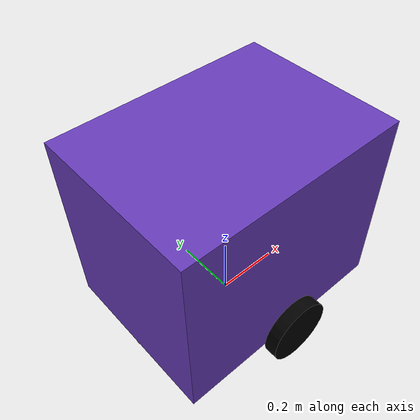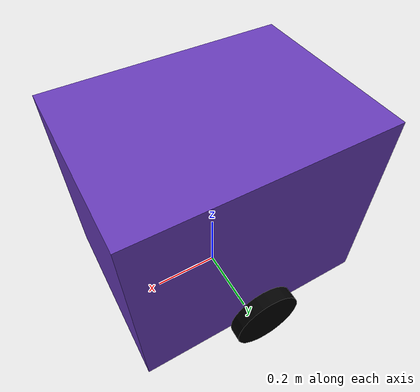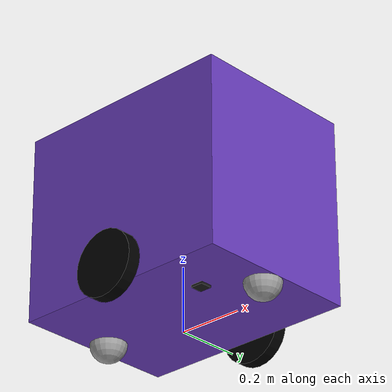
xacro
<?xml version="1.0"?>
<robot name="diff_drive_robot" xmlns:xacro="http://www.ros.org/wiki/xacro">

    <xacro:arg name="prefix" default=""/>
    <xacro:arg name="use_gazebo" default="false"/>

    <xacro:property name="chassis_link_l"        value="0.7"/>
    <xacro:property name="chassis_link_w"        value="0.52"/>
    <xacro:property name="chassis_link_h"        value="0.582"/>
    <xacro:property name="wheel_base"        value="0.593"/>
    <xacro:property name="chassis_high"        value="0.055"/>
    <xacro:property name="wheel_diameter"        value="0.2"/>
    <xacro:property name="wheel_width"        value="0.04"/>
    <xacro:property name="wheel_interval"        value="0.047"/>

    <xacro:include filename="robot_core.xacro" />

    <xacro:include filename="lidar.xacro" />
    <xacro:include filename="$(find diff_drive_robot)/urdf/imu_1500.xacro"/>
    <xacro:include filename="$(find diff_drive_robot)/urdf/astra_pro_plus.urdf.xacro"/>
    <xacro:include filename="$(find diff_drive_robot)/urdf/hk_ir_camera.urdf.xacro"/>

    <xacro:imu_sensor
      prefix="$(arg prefix)"
      parent="base_link"
      frame_id="imu"
      xyz_offset="0.16 -0.1 0.055"
      rpy_offset="0 0 0"
      update_rate="15.0"
      topic_name="imu/data"/>

      <xacro:astra_pro_plus/>
      <xacro:hk_ir_camera
        prefix="left_"
        xyz_offset="0.27 0.12 0.423"
      />
      <xacro:hk_ir_camera
        prefix="right_"
        xyz_offset="0.27 -0.08 0.423"
      />

    <joint name="stereo_ir_camera_joint" type="fixed">
      <parent link="base_link"/>  <!-- 或者其他合适的父link -->
      <child link="stereo_ir_camera"/> <!-- 虚拟的 -->
      <origin xyz="0.27 0.02 0.423" rpy="0 0 0"/>  <!-- 根据实际安装位置调整 -->
    </joint>

    <link name="stereo_ir_camera">
      <visual>
        <geometry>
          <box size="0 0 0"/>  <!-- 双相机支架的大致尺寸 -->
        </geometry>
        <material name="black">
          <color rgba="0.2 0.2 0.2 1"/>
        </material>
      </visual>
    </link>
</robot>

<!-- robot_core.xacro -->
<robot xmlns:xacro="http://www.ros.org/wiki/xacro" >

  <xacro:include filename="inertial_macros.xacro" />

  <link name="base_footprint"/>

  <joint name="base_link_joint" type="fixed">
    <parent link="base_footprint"/>
    <child link="base_link"/>
    <origin xyz="0 0 0"/>
  </joint>

  <!-- Base link -->
  <link name="base_link"/>

  <!-- Chassis link -->
  <joint name="chassis_joint" type="fixed">
    <parent link="base_link"/>
    <child link="chassis"/>
    <origin xyz="0 0 ${chassis_link_h/2+chassis_high}"/>
  </joint>

  <link name="chassis">
    <visual>
      <origin xyz="0 0 0" />
      <geometry>
        <box size="${chassis_link_l} ${chassis_link_w} ${chassis_link_h}"/>
      </geometry>
      <material name="chassis_material">
        <color rgba="0.40 0.23 0.72 1.0"/>
      </material>
    </visual>
    <collision>
      <origin xyz="0 0 0" />
      <geometry>
        <box size="${chassis_link_l} ${chassis_link_w} ${chassis_link_h}"/>
      </geometry>
    </collision>
    <xacro:inertial_box mass="0.5" x="${chassis_link_l}" y="${chassis_link_w}" z="${chassis_link_h}">
      <origin xyz="0 0 0" rpy="0 0 0"/>
    </xacro:inertial_box>
  </link>

  <!-- Left wheel (centered along length) -->
  <joint name="left_wheel_joint" type="continuous">
    <parent link="base_link"/>
    <child link="left_wheel"/>
    <origin xyz="0 ${wheel_base/2} ${wheel_diameter/2}" rpy="-${pi/2} 0 0"/>
    <axis xyz="0 0 1"/>
  </joint>
  <link name="left_wheel">
    <visual>
      <geometry>
        <cylinder radius="${wheel_diameter/2}" length="${wheel_width}"/>
      </geometry>
      <material name="wheel_material">
        <color rgba="0.0 0.0 0.0 1.0"/>
      </material>
    </visual>
    <collision>
      <geometry>
        <cylinder radius="${wheel_diameter/2}" length="${wheel_width}"/>
      </geometry>
    </collision>
    <xacro:inertial_cylinder mass="0.1" length="${wheel_width}" radius="${wheel_diameter/2}">
      <origin xyz="0 0 0" rpy="0 0 0"/>
    </xacro:inertial_cylinder>
  </link>

  <!-- Right wheel (centered along length) -->
  <joint name="right_wheel_joint" type="continuous">
    <parent link="base_link"/>
    <child link="right_wheel"/>
    <origin xyz="0 -${wheel_base/2} ${wheel_diameter/2}" rpy="${pi/2} 0 0"/>
    <axis xyz="0 0 -1"/>
  </joint>
  <link name="right_wheel">
    <visual>
      <geometry>
        <cylinder radius="${wheel_diameter/2}" length="${wheel_width}"/>
      </geometry>
      <material name="wheel_material">
        <color rgba="0.0 0.0 0.0 1.0"/>
      </material>
    </visual>
    <collision>
      <geometry>
        <cylinder radius="${wheel_diameter/2}" length="${wheel_width}"/>
      </geometry>
    </collision>
    <xacro:inertial_cylinder mass="0.1" length="${wheel_width}" radius="${wheel_diameter/2}">
      <origin xyz="0 0 0" rpy="0 0 0"/>
    </xacro:inertial_cylinder>
  </link>

  <!-- Front castor wheel (same height as main wheels) -->
  <joint name="front_castor_wheel_joint" type="fixed">
    <parent link="base_link"/>
    <child link="front_castor_wheel"/>
    <origin xyz="${chassis_link_l/2 - chassis_high} 0 ${chassis_high}" />
  </joint>
  <link name="front_castor_wheel">
    <visual>
      <geometry>
        <sphere radius="${chassis_high}"/>
      </geometry>
      <material name="castor_material">
        <color rgba="0.62 0.62 0.62 1.0"/>
      </material>
    </visual>
    <collision>
      <geometry>
        <sphere radius="${chassis_high}"/>
      </geometry>
    </collision>
    <xacro:inertial_sphere mass="0.1" radius="${chassis_high}">
      <origin xyz="0 0 0" rpy="0 0 0"/>
    </xacro:inertial_sphere>
  </link>

  <!-- Rear castor wheel (same height as main wheels) -->
  <joint name="rear_castor_wheel_joint" type="fixed">
    <parent link="base_link"/>
    <child link="rear_castor_wheel"/>
    <origin xyz="-${chassis_link_l/2 - chassis_high} 0 ${chassis_high}" />
  </joint>
  <link name="rear_castor_wheel">
    <visual>
      <geometry>
        <sphere radius="${chassis_high}"/>
      </geometry>
      <material name="castor_material">
        <color rgba="0.62 0.62 0.62 1.0"/>
      </material>
    </visual>
    <collision>
      <geometry>
        <sphere radius="${chassis_high}"/>
      </geometry>
    </collision>
    <xacro:inertial_sphere mass="0.1" radius="${chassis_high}">
      <origin xyz="0 0 0" rpy="0 0 0"/>
    </xacro:inertial_sphere>
  </link>

  <!-- Gazebo Parameters -->
  <gazebo reference="chassis_link">
    <mu1>1.0</mu1>
    <mu2>1.0</mu2>
  </gazebo>
  <gazebo reference="right_wheel">
    <mu1>1.0</mu1>
    <mu2>1.0</mu2>
  </gazebo>
  <gazebo reference="left_wheel">
    <mu1>1.0</mu1>
    <mu2>1.0</mu2>
  </gazebo>
  <gazebo reference="front_castor_wheel">
    <mu1>0.000001</mu1>
    <mu2>0.000001</mu2>
  </gazebo>
  <gazebo reference="rear_castor_wheel">
    <mu1>0.000001</mu1>
    <mu2>0.000001</mu2>
  </gazebo>
</robot>

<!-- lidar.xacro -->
<robot xmlns:xacro="http://www.ros.org/wiki/xacro" >
   <xacro:property name="laser_radius"        value="0.05"/>
    <xacro:property name="laser_width"        value="0.04"/>

   <joint name="laser_joint" type="fixed">
     <parent link="base_link"/>
     <child link="laser_frame"/>
     <origin xyz="0.28 0 0.315" rpy="0 0 0"/>
   </joint>
   <link name="laser_frame">
      <visual>
         <origin xyz="0 0 0"/>
         <geometry>
            <cylinder length="${laser_width}" radius="${laser_radius}"/>
         </geometry>
         <material name="laser_material">
            <color rgba="0.13 0.13 0.13 1.0"/>
         </material>
      </visual>
      <collision>
         <origin xyz="0 0 0"/>
         <geometry>
            <cylinder length="0.04" radius="0.05"/>
         </geometry>
      </collision>
      <xacro:inertial_cylinder mass="0.1" length="0.04" radius="0.05">
         <origin xyz="0 0 0" rpy="0 0 0"/>
      </xacro:inertial_cylinder>
   </link>

   <!-- 2D Lidar New Gazebo Sensor Plugin  -->
   <gazebo reference="laser_frame">
      <sensor name="laser" type="gpu_lidar">
         <pose> 0 0 0 0 0 0 </pose>
         <always_on>true</always_on>
         <visualize>true</visualize>
         <update_rate>10</update_rate>
         <topic>scan</topic>
         <gz_frame_id>laser_frame</gz_frame_id>
         <lidar>
            <scan>
               <horizontal>
               <samples>360</samples>
               <min_angle>-3.14</min_angle>
               <max_angle>3.14</max_angle>
               </horizontal>
            </scan>
            <range>
               <min>0.3</min>
               <max>12</max>
            </range>
         </lidar>
      </sensor>
   </gazebo>
</robot>

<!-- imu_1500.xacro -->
<robot xmlns:xacro="http://www.ros.org/wiki/xacro">
    <xacro:property name="M_PI" value="3.1415926535897931" />

    <xacro:macro name="imu_sensor" params="
        prefix:=''
        parent:='base_link'
        frame_id:='imu'
        xyz_offset:='0.34 0 0'
        rpy_offset:='0 0 0'
        inertial_xyz_offset:='0.34 0 0'
        inertial_rpy_offset:='0 0 0'
        mass:=0.031
        length:=0.03899
        width:=0.03785
        height:=0.01338
        material_name:='imu_black'
        material_color:='0.1 0.1 0.1 1'
        gazebo_material_ambient:='0.1 0.1 0.1 1'
        gazebo_material_diffuse:='0.1 0.1 0.1 1'
        gazebo_material_specular:='0.1 0.1 0.1 1'
        update_rate:='15.0'
        topic_name:='imu/data'
        always_on:=true
        visualize:=false">

        <xacro:property name="ixx" value="${(mass/12.0) * (height*height + width*width)}" />
        <xacro:property name="iyy" value="${(mass/12.0) * (length*length + height*height)}" />
        <xacro:property name="izz" value="${(mass/12.0) * (length*length + width*width)}" />

        <link name="${prefix}${frame_id}_link">
            <visual>
                <origin xyz="0 0 0" rpy="0 0 0"/>
                <geometry>
                    <box size="${length} ${width} ${height}"/>
                </geometry>
                <material name="${material_name}">
                    <color rgba="${material_color}"/>
                </material>
            </visual>

            <inertial>
                <mass value="${mass}" />
                <origin xyz="${inertial_xyz_offset}" rpy="${inertial_rpy_offset}"/>
                <inertia
                    ixx="${ixx}"
                    ixy="0.0"
                    ixz="0.0"
                    iyy="${iyy}"
                    iyz="0.0"
                    izz="${izz}" />
            </inertial>
        </link>

        <joint name="${prefix}${frame_id}_joint" type="fixed">
            <parent link="${prefix}${parent}"/>
            <child link="${prefix}${frame_id}_link" />
            <origin xyz="0.16 -0.1 0.055" rpy="${rpy_offset}"/>
        </joint>

        <gazebo reference="${prefix}${frame_id}_link">
            <material>
                <ambient>${gazebo_material_ambient}</ambient>
                <diffuse>${gazebo_material_diffuse}</diffuse>
                <specular>${gazebo_material_specular}</specular>
            </material>
            <sensor name="${prefix}imu_sensor" type="imu">
                <topic>${topic_name}</topic>
                <update_rate>${update_rate}</update_rate>
                <always_on>${always_on}</always_on>
                <visualize>${visualize}</visualize>
                <gz_frame_id>${prefix}${frame_id}_link</gz_frame_id>
            </sensor>
        </gazebo>
    </xacro:macro>
</robot>

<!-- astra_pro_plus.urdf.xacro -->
<robot xmlns:xacro="http://www.ros.org/wiki/xacro">

  <xacro:property name="M_PI" value="3.1415926535897931" />

  <xacro:macro name="astra_pro_plus" params="
    prefix:=''
    camera_name:='astra_pro_plus'
    parent:='base_link'
    xyz_offset:='0.24 -0.02 0.51'
    rpy_offset:='0 0 0'
    mesh_xyz_offset:='0 0 0'
    mesh_rpy_offset:='${M_PI/2} 0.0 ${M_PI/2}'
    collision_xyz_offset:='0 0 0'
    collision_rpy_offset:='0 0 0'
    inertial_xyz_offset:='0 0 0'
    inertial_rpy_offset:='0 0 0'
    optical_xyz_offset:='0 0 0'
    optical_rpy_offset:='${-M_PI/2} 0 ${-M_PI/2}'
    depth_frame_xyz_offset:='0 0 0'
    depth_frame_rpy_offset:='0 0 0'
    infra1_xyz_offset:='0 0 0'
    infra1_rpy_offset:='0 0 0'
    infra2_xyz_offset:='0 -0.05 0'
    infra2_rpy_offset:='0 0 0'
    color_xyz_offset:='0 0.015 0'
    color_rpy_offset:='0 0 0'
    cam_width:=0.090
    cam_height:=0.025
    cam_depth:=0.02505
    mass:=0.072
    ixx:=0.003881243
    ixy:=0.0
    ixz:=0.0
    iyy:=0.000498940
    iyz:=0.0
    izz:=0.003879257
    material_name:='aluminum'
    material_color:='0.5 0.5 0.5 1'
    horizontal_fov:=1.5184
    image_width:=424
    image_height:=240
    clip_near:=0.05
    clip_far:=1.5
    update_rate:=2
    always_on:=1
    visualize:=true
    enable_collision:=false">

    <link name="${prefix}camera_link">
      <visual>
        <origin xyz="0 0 0" rpy="0 0 0"/>
        <geometry>
          <box size="0.02 0.08 0.02"/>
        </geometry>
        <material name="${material_name}">
          <color rgba="${material_color}"/>
        </material>
      </visual>
      <xacro:if value="${enable_collision}">
        <collision>
          <origin xyz="${collision_xyz_offset}" rpy="${collision_rpy_offset}"/>
          <geometry>
            <box size="${cam_depth} ${cam_width} ${cam_height}"/>
          </geometry>
        </collision>
      </xacro:if>
      <inertial>
        <mass value="${mass}" />
        <origin xyz="${inertial_xyz_offset}" rpy="${inertial_rpy_offset}"/>
        <inertia ixx="${ixx}" ixy="${ixy}" ixz="${ixz}"
                 iyy="${iyy}" iyz="${iyz}" izz="${izz}" />
      </inertial>
    </link>

    <joint name="${prefix}${camera_name}_joint" type="fixed">
      <parent link="${prefix}base_link"/>
      <child link="${prefix}camera_link" />
      <origin xyz="${xyz_offset}" rpy="${rpy_offset}"/>
    </joint>

    <gazebo reference="${prefix}camera_depth_optical_frame">
      <sensor name="${prefix}astra_pro_plus" type="rgbd_camera">
        <camera>
          <horizontal_fov>${horizontal_fov}</horizontal_fov>
          <image>
            <width>${image_width}</width>
            <height>${image_height}</height>
          </image>
          <clip>
            <near>${clip_near}</near>
            <far>${clip_far}</far>
          </clip>
        </camera>
        <always_on>${always_on}</always_on>
        <gz_frame_id>${prefix}${camera_name}_link</gz_frame_id>
        <topic>${camera_name}</topic>
        <update_rate>${update_rate}</update_rate>
        <visualize>${visualize}</visualize>
      </sensor>
    </gazebo>

  </xacro:macro>
</robot>

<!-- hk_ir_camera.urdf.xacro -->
<robot xmlns:xacro="http://www.ros.org/wiki/xacro">

  <xacro:property name="M_PI" value="3.1415926535897931" />

  <xacro:macro name="hk_ir_camera" params="
    prefix:=''
    camera_name:='hk_camera'
    parent:='base_link'
    xyz_offset:='0.30 0.25 0.22'
    rpy_offset:='0 0 0'
    mesh_xyz_offset:='0 0 0'
    mesh_rpy_offset:='${M_PI/2} 0.0 ${M_PI/2}'
    collision_xyz_offset:='0 0 0'
    collision_rpy_offset:='0 0 0'
    inertial_xyz_offset:='0 0 0'
    inertial_rpy_offset:='0 0 0'
    optical_xyz_offset:='0 0 0'
    optical_rpy_offset:='${-M_PI/2} 0 ${-M_PI/2}'
    depth_frame_xyz_offset:='0 0 0'
    depth_frame_rpy_offset:='0 0 0'
    infra1_xyz_offset:='0 0 0'
    infra1_rpy_offset:='0 0 0'
    infra2_xyz_offset:='0 -0.05 0'
    infra2_rpy_offset:='0 0 0'
    color_xyz_offset:='0 0.015 0'
    color_rpy_offset:='0 0 0'
    cam_width:=0.08
    cam_height:=0.05
    cam_depth:=0.05
    mass:=0.072
    ixx:=0.003881243
    ixy:=0.0
    ixz:=0.0
    iyy:=0.000498940
    iyz:=0.0
    izz:=0.003879257
    material_name:='aluminum'
    material_color:='0.5 0.5 0.5 1'
    horizontal_fov:=1.5184
    image_width:=424
    image_height:=240
    clip_near:=0.05
    clip_far:=1.5
    update_rate:=2
    always_on:=1
    visualize:=true
    enable_collision:=false">

    <link name="${prefix}${camera_name}_optical_frame">
      <visual>
        <origin xyz="0 0 0" rpy="0 0 0"/>
        <geometry>
          <box size="${cam_depth} ${cam_width} ${cam_height}"/>
        </geometry>
        <material name="${material_name}">
          <color rgba="${material_color}"/>
        </material>
      </visual>
      <xacro:if value="${enable_collision}">
        <collision>
          <origin xyz="${collision_xyz_offset}" rpy="${collision_rpy_offset}"/>
          <geometry>
            <box size="${cam_depth} ${cam_width} ${cam_height}"/>
          </geometry>
        </collision>
      </xacro:if>
      <inertial>
        <mass value="${mass}" />
        <origin xyz="${inertial_xyz_offset}" rpy="${inertial_rpy_offset}"/>
        <inertia ixx="${ixx}" ixy="${ixy}" ixz="${ixz}"
                 iyy="${iyy}" iyz="${iyz}" izz="${izz}" />
      </inertial>
    </link>

    <joint name="${prefix}${camera_name}_joint" type="fixed">
      <parent link="base_link"/>
      <child link="${prefix}${camera_name}_optical_frame" />
      <origin xyz="${xyz_offset}" rpy="${rpy_offset}"/>
    </joint>
  </xacro:macro>
</robot>
